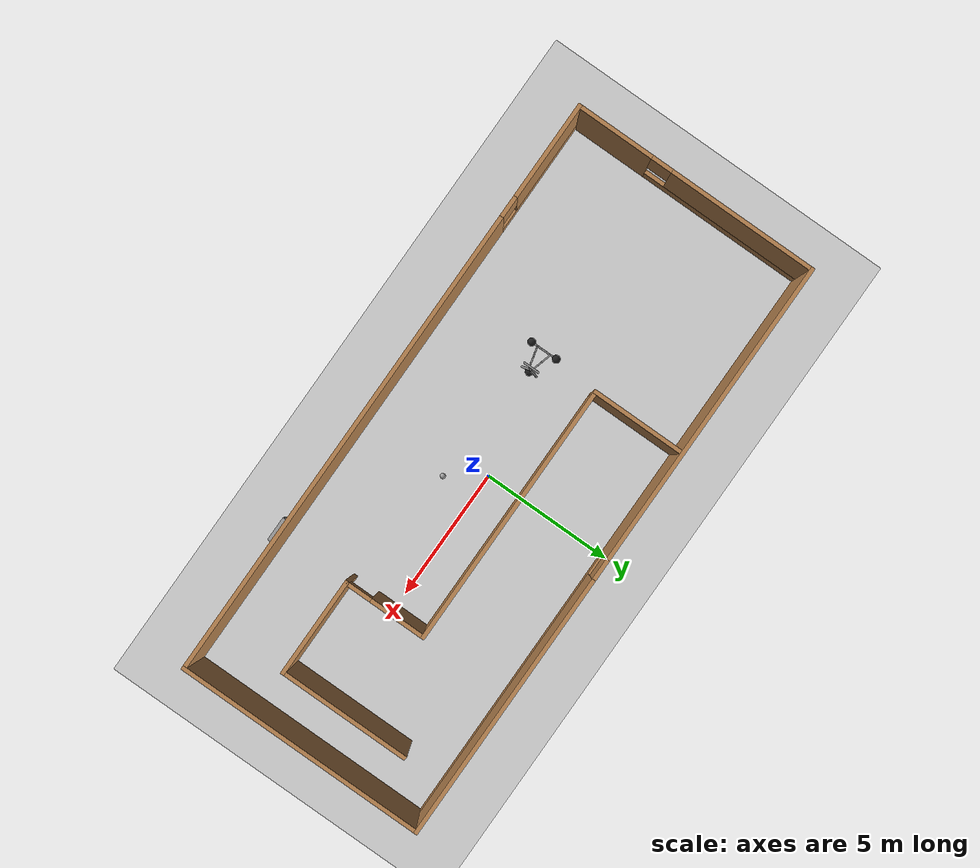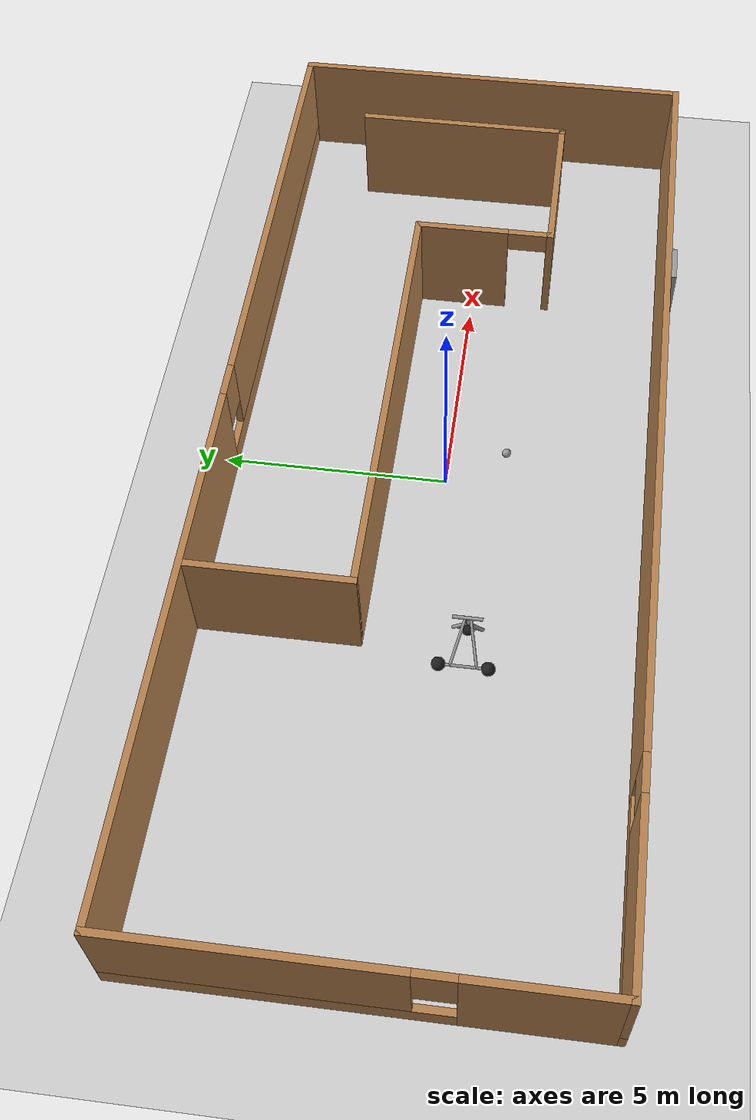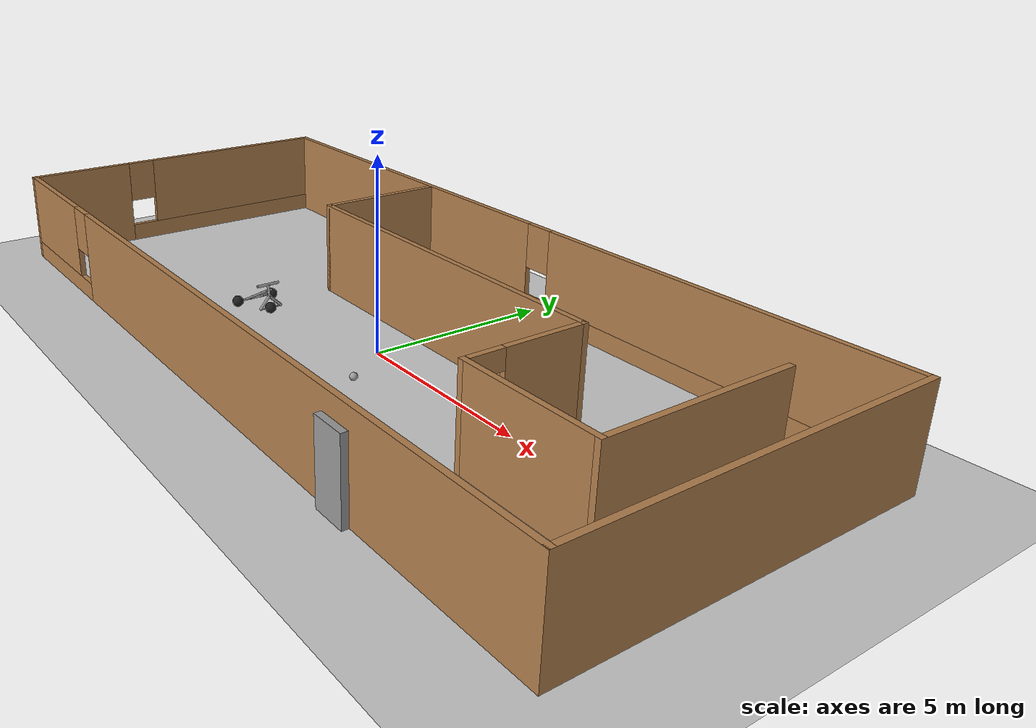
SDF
<sdf version="1.6">
 <world name="default">
  <model name="ground_plane">
   <static>1</static>
   <link name="link">
    <collision name="collision">
     <geometry><plane><normal>0 0 1</normal><size>100 100</size></plane></geometry>
     <surface>
      <contact><collide_bitmask>65535</collide_bitmask></contact>
      <friction><ode><mu>100</mu><mu2>50</mu2></ode></friction>
     </surface>
    </collision>
    <visual name="visual">
     <cast_shadows>0</cast_shadows>
     <geometry><plane><normal>0 0 1</normal><size>100 100</size></plane></geometry>
     <material>
      <script><uri>file://media/materials/scripts/gazebo.material</uri><name>Gazebo/Grey</name></script>
     </material>
    </visual>
   </link>
  </model>
  <model name="LEEsbuilding">
   <pose>-0.38879 0.13876 0 0 -0 0</pose>
   <link name="Door_2">
    <collision name="Door_2_Collision">
     <geometry><box><size>0.9 0.17 2</size></box></geometry>
     <pose>0 0 1 0 -0 0</pose>
    </collision>
    <visual name="Door_2_Visual">
     <pose>0 0 1 0 -0 0</pose>
     <geometry><box><size>0.9 0.17 2</size></box></geometry>
     <material>
      <script><uri>file://media/materials/scripts/gazebo.material</uri><name>Gazebo/Grey</name></script>
     </material>
    </visual>
    <pose>5.88188 -4.8378 0 0 -0 0</pose>
   </link>
   <link name="Wall_11">
    <collision name="Wall_11_Collision">
     <geometry><box><size>3.75 0.15 2.5</size></box></geometry>
     <pose>0 0 1.25 0 -0 0</pose>
    </collision>
    <visual name="Wall_11_Visual">
     <pose>0 0 1.25 0 -0 0</pose>
     <geometry><box><size>3.75 0.15 2.5</size></box></geometry>
     <material>
      <script><uri>file://media/materials/scripts/gazebo.material</uri><name>Gazebo/Wood</name></script>
      <ambient>1 1 1 1</ambient>
     </material>
     <meta><layer>0</layer></meta>
    </visual>
    <pose>7.73215 -1.9245 0 0 -0 0</pose>
   </link>
   <link name="Wall_12">
    <collision name="Wall_12_Collision">
     <geometry><box><size>5 0.15 2.5</size></box></geometry>
     <pose>0 0 1.25 0 -0 0</pose>
    </collision>
    <visual name="Wall_12_Visual">
     <pose>0 0 1.25 0 -0 0</pose>
     <geometry><box><size>5 0.15 2.5</size></box></geometry>
     <material>
      <script><uri>file://media/materials/scripts/gazebo.material</uri><name>Gazebo/Wood</name></script>
      <ambient>1 1 1 1</ambient>
     </material>
     <meta><layer>0</layer></meta>
    </visual>
    <pose>9.53215 0.500496 0 0 -0 1.5708</pose>
   </link>
   <link name="Wall_2">
    <pose>0 4.675 0 0 -0 0</pose>
    <visual name="Wall_2_Visual_0">
     <pose>-5.5056 0 1.25 0 -0 0</pose>
     <geometry><box><size>11.7388 0.15 2.5</size></box></geometry>
     <material>
      <script><uri>file://media/materials/scripts/gazebo.material</uri><name>Gazebo/Wood</name></script>
      <ambient>1 1 1 1</ambient>
     </material>
     <meta><layer>0</layer></meta>
    </visual>
    <collision name="Wall_2_Collision_0">
     <geometry><box><size>11.7388 0.15 2.5</size></box></geometry>
     <pose>-5.5056 0 1.25 0 -0 0</pose>
    </collision>
    <visual name="Wall_2_Visual_1">
     <pose>5.8694 0 0.25 0 -0 0</pose>
     <geometry><box><size>11.0112 0.15 0.5</size></box></geometry>
     <material>
      <script><uri>file://media/materials/scripts/gazebo.material</uri><name>Gazebo/Wood</name></script>
      <ambient>1 1 1 1</ambient>
     </material>
     <meta><layer>0</layer></meta>
    </visual>
    <collision name="Wall_2_Collision_1">
     <geometry><box><size>11.0112 0.15 0.5</size></box></geometry>
     <pose>5.8694 0 0.25 0 -0 0</pose>
    </collision>
    <visual name="Wall_2_Visual_2">
     <pose>6.2694 0 1.5 0 -0 0</pose>
     <geometry><box><size>10.2112 0.15 2</size></box></geometry>
     <material>
      <script><uri>file://media/materials/scripts/gazebo.material</uri><name>Gazebo/Wood</name></script>
      <ambient>1 1 1 1</ambient>
     </material>
     <meta><layer>0</layer></meta>
    </visual>
    <collision name="Wall_2_Collision_2">
     <geometry><box><size>10.2112 0.15 2</size></box></geometry>
     <pose>6.2694 0 1.5 0 -0 0</pose>
    </collision>
    <visual name="Wall_2_Visual_3">
     <pose>0.763804 0 1.9 0 -0 0</pose>
     <geometry><box><size>0.8 0.15 1.2</size></box></geometry>
     <material>
      <script><uri>file://media/materials/scripts/gazebo.material</uri><name>Gazebo/Wood</name></script>
      <ambient>1 1 1 1</ambient>
     </material>
     <meta><layer>0</layer></meta>
    </visual>
    <collision name="Wall_2_Collision_3">
     <geometry><box><size>0.8 0.15 1.2</size></box></geometry>
     <pose>0.763804 0 1.9 0 -0 0</pose>
    </collision>
   </link>
   <link name="Wall_3">
    <collision name="Wall_3_Collision">
     <geometry><box><size>9.5 0.15 2.5</size></box></geometry>
     <pose>0 0 1.25 0 -0 0</pose>
    </collision>
    <visual name="Wall_3_Visual">
     <pose>0 0 1.25 0 -0 0</pose>
     <geometry><box><size>9.5 0.15 2.5</size></box></geometry>
     <material>
      <script><uri>file://media/materials/scripts/gazebo.material</uri><name>Gazebo/Wood</name></script>
      <ambient>1 1 1 1</ambient>
     </material>
     <meta><layer>0</layer></meta>
    </visual>
    <pose>11.3 0 0 0 0 -1.5708</pose>
   </link>
   <link name="Wall_4">
    <pose>0 -4.675 0 0 -0 3.14159</pose>
    <visual name="Wall_4_Visual_0">
     <pose>-2.26223 0 1.25 0 -0 0</pose>
     <geometry><box><size>18.2255 0.15 2.5</size></box></geometry>
     <material>
      <script><uri>file://media/materials/scripts/gazebo.material</uri><name>Gazebo/Wood</name></script>
      <ambient>1 1 1 1</ambient>
     </material>
     <meta><layer>0</layer></meta>
    </visual>
    <collision name="Wall_4_Collision_0">
     <geometry><box><size>18.2255 0.15 2.5</size></box></geometry>
     <pose>-2.26223 0 1.25 0 -0 0</pose>
    </collision>
    <visual name="Wall_4_Visual_1">
     <pose>9.11277 0 0.25 0 -0 0</pose>
     <geometry><box><size>4.52445 0.15 0.5</size></box></geometry>
     <material>
      <script><uri>file://media/materials/scripts/gazebo.material</uri><name>Gazebo/Wood</name></script>
      <ambient>1 1 1 1</ambient>
     </material>
     <meta><layer>0</layer></meta>
    </visual>
    <collision name="Wall_4_Collision_1">
     <geometry><box><size>4.52445 0.15 0.5</size></box></geometry>
     <pose>9.11277 0 0.25 0 -0 0</pose>
    </collision>
    <visual name="Wall_4_Visual_2">
     <pose>9.51277 0 1.5 0 -0 0</pose>
     <geometry><box><size>3.72445 0.15 2</size></box></geometry>
     <material>
      <script><uri>file://media/materials/scripts/gazebo.material</uri><name>Gazebo/Wood</name></script>
      <ambient>1 1 1 1</ambient>
     </material>
     <meta><layer>0</layer></meta>
    </visual>
    <collision name="Wall_4_Collision_2">
     <geometry><box><size>3.72445 0.15 2</size></box></geometry>
     <pose>9.51277 0 1.5 0 -0 0</pose>
    </collision>
    <visual name="Wall_4_Visual_3">
     <pose>7.25055 0 1.9 0 -0 0</pose>
     <geometry><box><size>0.8 0.15 1.2</size></box></geometry>
     <material>
      <script><uri>file://media/materials/scripts/gazebo.material</uri><name>Gazebo/Wood</name></script>
      <ambient>1 1 1 1</ambient>
     </material>
     <meta><layer>0</layer></meta>
    </visual>
    <collision name="Wall_4_Collision_3">
     <geometry><box><size>0.8 0.15 1.2</size></box></geometry>
     <pose>7.25055 0 1.9 0 -0 0</pose>
    </collision>
   </link>
   <link name="Wall_5">
    <pose>-11.3 0 0 0 -0 1.5708</pose>
    <visual name="Wall_5_Visual_0">
     <pose>-3.2482 0 1.25 0 -0 0</pose>
     <geometry><box><size>3.0036 0.15 2.5</size></box></geometry>
     <material>
      <script><uri>file://media/materials/scripts/gazebo.material</uri><name>Gazebo/Wood</name></script>
      <ambient>1 1 1 1</ambient>
     </material>
     <meta><layer>0</layer></meta>
    </visual>
    <collision name="Wall_5_Collision_0">
     <geometry><box><size>3.0036 0.15 2.5</size></box></geometry>
     <pose>-3.2482 0 1.25 0 -0 0</pose>
    </collision>
    <visual name="Wall_5_Visual_1">
     <pose>1.5018 0 0.25 0 -0 0</pose>
     <geometry><box><size>6.4964 0.15 0.5</size></box></geometry>
     <material>
      <script><uri>file://media/materials/scripts/gazebo.material</uri><name>Gazebo/Wood</name></script>
      <ambient>1 1 1 1</ambient>
     </material>
     <meta><layer>0</layer></meta>
    </visual>
    <collision name="Wall_5_Collision_1">
     <geometry><box><size>6.4964 0.15 0.5</size></box></geometry>
     <pose>1.5018 0 0.25 0 -0 0</pose>
    </collision>
    <visual name="Wall_5_Visual_2">
     <pose>1.9018 0 1.5 0 -0 0</pose>
     <geometry><box><size>5.6964 0.15 2</size></box></geometry>
     <material>
      <script><uri>file://media/materials/scripts/gazebo.material</uri><name>Gazebo/Wood</name></script>
      <ambient>1 1 1 1</ambient>
     </material>
     <meta><layer>0</layer></meta>
    </visual>
    <collision name="Wall_5_Collision_2">
     <geometry><box><size>5.6964 0.15 2</size></box></geometry>
     <pose>1.9018 0 1.5 0 -0 0</pose>
    </collision>
    <visual name="Wall_5_Visual_3">
     <pose>-1.3464 0 1.9 0 -0 0</pose>
     <geometry><box><size>0.8 0.15 1.2</size></box></geometry>
     <material>
      <script><uri>file://media/materials/scripts/gazebo.material</uri><name>Gazebo/Wood</name></script>
      <ambient>1 1 1 1</ambient>
     </material>
     <meta><layer>0</layer></meta>
    </visual>
    <collision name="Wall_5_Collision_3">
     <geometry><box><size>0.8 0.15 1.2</size></box></geometry>
     <pose>-1.3464 0 1.9 0 -0 0</pose>
    </collision>
   </link>
   <link name="Wall_7">
    <collision name="Wall_7_Collision">
     <geometry><box><size>3.5 0.15 2.5</size></box></geometry>
     <pose>0 0 1.25 0 -0 0</pose>
    </collision>
    <visual name="Wall_7_Visual">
     <pose>0 0 1.25 0 -0 0</pose>
     <geometry><box><size>3.5 0.15 2.5</size></box></geometry>
     <material>
      <script><uri>file://media/materials/scripts/gazebo.material</uri><name>Gazebo/Wood</name></script>
      <ambient>1 1 1 1</ambient>
     </material>
     <meta><layer>0</layer></meta>
    </visual>
    <pose>-3.91784 2.8505 0 0 0 -1.5708</pose>
   </link>
   <link name="Wall_8">
    <collision name="Wall_8_Collision">
     <geometry><box><size>10 0.15 2.5</size></box></geometry>
     <pose>0 0 1.25 0 -0 0</pose>
    </collision>
    <visual name="Wall_8_Visual">
     <pose>0 0 1.25 0 -0 0</pose>
     <geometry><box><size>10 0.15 2.5</size></box></geometry>
     <material>
      <script><uri>file://media/materials/scripts/gazebo.material</uri><name>Gazebo/Wood</name></script>
      <ambient>1 1 1 1</ambient>
     </material>
     <meta><layer>0</layer></meta>
    </visual>
    <pose>1.00716 1.1755 0 0 -0 0</pose>
   </link>
   <link name="Wall_9">
    <pose>5.93215 -0.374504 0 0 0 -1.5708</pose>
    <visual name="Wall_9_Visual_0">
     <pose>-0.531713 0 1.25 0 -0 0</pose>
     <geometry><box><size>2.18657 0.15 2.5</size></box></geometry>
     <material>
      <script><uri>file://media/materials/scripts/gazebo.material</uri><name>Gazebo/Wood</name></script>
      <ambient>1 1 1 1</ambient>
     </material>
     <meta><layer>0</layer></meta>
    </visual>
    <collision name="Wall_9_Collision_0">
     <geometry><box><size>2.18657 0.15 2.5</size></box></geometry>
     <pose>-0.531713 0 1.25 0 -0 0</pose>
    </collision>
    <visual name="Wall_9_Visual_1">
     <pose>1.54329 0 1.25 0 -0 0</pose>
     <geometry><box><size>0.163425 0.15 2.5</size></box></geometry>
     <material>
      <script><uri>file://media/materials/scripts/gazebo.material</uri><name>Gazebo/Wood</name></script>
      <ambient>1 1 1 1</ambient>
     </material>
     <meta><layer>0</layer></meta>
    </visual>
    <collision name="Wall_9_Collision_1">
     <geometry><box><size>0.163425 0.15 2.5</size></box></geometry>
     <pose>1.54329 0 1.25 0 -0 0</pose>
    </collision>
    <visual name="Wall_9_Visual_2">
     <pose>1.01157 0 2.25 0 -0 0</pose>
     <geometry><box><size>0.9 0.15 0.5</size></box></geometry>
     <material>
      <script><uri>file://media/materials/scripts/gazebo.material</uri><name>Gazebo/Wood</name></script>
      <ambient>1 1 1 1</ambient>
     </material>
     <meta><layer>0</layer></meta>
    </visual>
    <collision name="Wall_9_Collision_2">
     <geometry><box><size>0.9 0.15 0.5</size></box></geometry>
     <pose>1.01157 0 2.25 0 -0 0</pose>
    </collision>
   </link>
   <static>1</static>
  </model>
  <model name="my_ball">
   <link name="link_1">
    <inertial>
     <mass>1</mass>
     <inertia><ixx>0.1</ixx><ixy>0</ixy><ixz>0</ixz><iyy>0.1</iyy><iyz>0</iyz><izz>0.1</izz></inertia>
    </inertial>
    <visual name="visual">
     <geometry><sphere><radius>0.1</radius></sphere></geometry>
     <material>
      <lighting>1</lighting>
      <script><uri>file://media/materials/scripts/gazebo.material</uri><name>Gazebo/Grey</name></script>
      <shader type="pixel"><normal_map>__default__</normal_map></shader>
      <ambient>1 1 1 1</ambient>
      <diffuse>1 1 1 1</diffuse>
      <specular>1 1 1 1</specular>
      <emissive>1 1 1 1</emissive>
     </material>
    </visual>
    <collision name="collision">
     <geometry><sphere><radius>0.1</radius></sphere></geometry>
     <surface>
      <friction>
       <ode><mu>1</mu><mu2>1</mu2><fdir1>0 0 0</fdir1><slip1>0</slip1><slip2>0</slip2></ode>
       <torsional>
        <coefficient>1</coefficient>
        <patch_radius>0</patch_radius>
        <surface_radius>0</surface_radius>
        <use_patch_radius>1</use_patch_radius>
        <ode><slip>0</slip></ode>
       </torsional>
      </friction>
      <bounce><restitution_coefficient>0</restitution_coefficient><threshold>1e+06</threshold></bounce>
      <contact>
       <collide_without_contact>0</collide_without_contact>
       <collide_without_contact_bitmask>1</collide_without_contact_bitmask>
       <collide_bitmask>1</collide_bitmask>
       <ode>
        <soft_cfm>0</soft_cfm>
        <soft_erp>0.2</soft_erp>
        <kp>1e+13</kp>
        <kd>1</kd>
        <max_vel>0.01</max_vel>
        <min_depth>0</min_depth>
       </ode>
       <bullet>
        <split_impulse>1</split_impulse>
        <split_impulse_penetration_threshold>-0.01</split_impulse_penetration_threshold>
        <soft_cfm>0</soft_cfm>
        <soft_erp>0.2</soft_erp>
        <kp>1e+13</kp>
        <kd>1</kd>
       </bullet>
      </contact>
     </surface>
    </collision>
   </link>
   <static>0</static>
   <pose>0.910769 -1.28817 0.1 0 -0 0</pose>
  </model>
  <model name="trisphere_cycle">
   <link name="frame">
    <pose>-0.408559 0 0.385023 0 -0.522021 0</pose>
    <inertial>
     <mass>10</mass>
     <inertia><ixx>0.228</ixx><iyy>0.743521</iyy><izz>0.965521</izz><ixy>0</ixy><ixz>0</ixz><iyz>0</iyz></inertia>
    </inertial>
    <collision name="axle_collision">
     <pose>-0.471335 0 0 1.5708 -0 0</pose>
     <geometry><cylinder><length>1.03923</length><radius>0.03</radius></cylinder></geometry>
    </collision>
    <visual name="axle_visual">
     <pose>-0.471335 0 0 1.5708 -0 0</pose>
     <geometry><cylinder><length>1.03923</length><radius>0.03</radius></cylinder></geometry>
     <material>
      <script><uri>file://media/materials/scripts/gazebo.material</uri><name>Gazebo/Grey</name></script>
     </material>
    </visual>
    <collision name="frame_left_collision">
     <pose>0 0.171552 0 2.986 1.57079 2.76675</pose>
     <geometry><cylinder><length>1.00317</length><radius>0.03</radius></cylinder></geometry>
    </collision>
    <visual name="frame_left_visual">
     <pose>0 0.171552 0 2.986 1.57079 2.76675</pose>
     <geometry><cylinder><length>1.00317</length><radius>0.03</radius></cylinder></geometry>
     <material>
      <script><uri>file://media/materials/scripts/gazebo.material</uri><name>Gazebo/Grey</name></script>
     </material>
    </visual>
    <collision name="frame_right_collision">
     <pose>0 -0.171552 0 -2.986 1.57079 -2.76675</pose>
     <geometry><cylinder><length>1.00317</length><radius>0.03</radius></cylinder></geometry>
    </collision>
    <visual name="frame_right_visual">
     <pose>0 -0.171552 0 -2.986 1.57079 -2.76675</pose>
     <geometry><cylinder><length>1.00317</length><radius>0.03</radius></cylinder></geometry>
     <material>
      <script><uri>file://media/materials/scripts/gazebo.material</uri><name>Gazebo/Grey</name></script>
     </material>
    </visual>
   </link>
   <link name="fork">
    <pose>0.041441 0 0.385023 0 -0.174533 0</pose>
    <inertial>
     <mass>3</mass>
     <inertia>
      <ixx>0.158203</ixx>
      <iyy>0.0583594</iyy>
      <izz>0.102656</izz>
      <ixy>0</ixy>
      <ixz>0</ixz>
      <iyz>0</iyz>
     </inertia>
    </inertial>
    <collision name="handlebars_collision">
     <pose>0 0 0.397748 1.5708 -0 0</pose>
     <geometry><cylinder><length>0.636396</length><radius>0.0375</radius></cylinder></geometry>
    </collision>
    <visual name="handlebars_visual">
     <pose>0 0 0.397748 1.5708 -0 0</pose>
     <geometry><cylinder><length>0.636396</length><radius>0.0375</radius></cylinder></geometry>
     <material>
      <script><uri>file://media/materials/scripts/gazebo.material</uri><name>Gazebo/Grey</name></script>
     </material>
    </visual>
    <collision name="headtube_collision">
     <pose>0 0 0.238649 0 -0 0</pose>
     <geometry><cylinder><length>0.318198</length><radius>0.0375</radius></cylinder></geometry>
    </collision>
    <visual name="headtube_visual">
     <pose>0 0 0.238649 0 -0 0</pose>
     <geometry><cylinder><length>0.318198</length><radius>0.0375</radius></cylinder></geometry>
     <material>
      <script><uri>file://media/materials/scripts/gazebo.material</uri><name>Gazebo/Grey</name></script>
     </material>
    </visual>
    <collision name="spindle_collision">
     <pose>0 0 -0.238649 1.5708 -0 0</pose>
     <geometry><cylinder><length>0.636396</length><radius>0.015</radius></cylinder></geometry>
    </collision>
    <visual name="spindle_visual">
     <pose>0 0 -0.238649 1.5708 -0 0</pose>
     <geometry><cylinder><length>0.636396</length><radius>0.015</radius></cylinder></geometry>
     <material>
      <script><uri>file://media/materials/scripts/gazebo.material</uri><name>Gazebo/Grey</name></script>
     </material>
    </visual>
    <collision name="fork_left_collision">
     <pose>0 0.159099 -0.07955 0.785398 -0 0</pose>
     <geometry><cylinder><length>0.45</length><radius>0.0375</radius></cylinder></geometry>
    </collision>
    <visual name="fork_left_visual">
     <pose>0 0.159099 -0.07955 0.785398 -0 0</pose>
     <geometry><cylinder><length>0.45</length><radius>0.0375</radius></cylinder></geometry>
     <material>
      <script><uri>file://media/materials/scripts/gazebo.material</uri><name>Gazebo/Grey</name></script>
     </material>
    </visual>
    <collision name="fork_right_collision">
     <pose>0 -0.159099 -0.07955 -0.785398 0 0</pose>
     <geometry><cylinder><length>0.45</length><radius>0.0375</radius></cylinder></geometry>
    </collision>
    <visual name="fork_right_visual">
     <pose>0 -0.159099 -0.07955 -0.785398 0 0</pose>
     <geometry><cylinder><length>0.45</length><radius>0.0375</radius></cylinder></geometry>
     <material>
      <script><uri>file://media/materials/scripts/gazebo.material</uri><name>Gazebo/Grey</name></script>
     </material>
    </visual>
   </link>
   <link name="wheel_front">
    <pose>0.082882 0 0.15 0 -0 0</pose>
    <inertial>
     <mass>0.5</mass>
     <inertia><ixx>0.0045</ixx><iyy>0.0045</iyy><izz>0.0045</izz><ixy>0</ixy><ixz>0</ixz><iyz>0</iyz></inertia>
    </inertial>
    <collision name="collision">
     <geometry><sphere><radius>0.15</radius></sphere></geometry>
     <surface><contact><ode><kp>1e+08</kp><kd>1</kd><min_depth>0.0005</min_depth></ode></contact></surface>
    </collision>
    <visual name="visual">
     <geometry><sphere><radius>0.15</radius></sphere></geometry>
     <material>
      <script><uri>file://media/materials/scripts/gazebo.material</uri><name>Gazebo/Black</name></script>
     </material>
    </visual>
   </link>
   <joint name="wheel_front_steer" type="revolute">
    <parent>frame</parent>
    <child>fork</child>
    <axis>
     <xyz>0 0 1</xyz>
     <limit><lower>-0.959931</lower><upper>0.959931</upper></limit>
     <use_parent_model_frame>0</use_parent_model_frame>
     <dynamics><spring_reference>0</spring_reference><spring_stiffness>0</spring_stiffness></dynamics>
    </axis>
   </joint>
   <joint name="wheel_front_spin" type="revolute">
    <parent>fork</parent>
    <child>wheel_front</child>
    <axis>
     <xyz>0 1 0</xyz>
     <use_parent_model_frame>0</use_parent_model_frame>
     <limit><lower>-1e+16</lower><upper>1e+16</upper></limit>
     <dynamics><spring_reference>0</spring_reference><spring_stiffness>0</spring_stiffness></dynamics>
    </axis>
   </joint>
   <link name="wheel_rear_left">
    <pose>-0.817118 0.519615 0.15 0 -0 0</pose>
    <inertial>
     <mass>0.5</mass>
     <inertia><ixx>0.0045</ixx><iyy>0.0045</iyy><izz>0.0045</izz><ixy>0</ixy><ixz>0</ixz><iyz>0</iyz></inertia>
    </inertial>
    <collision name="collision">
     <geometry><sphere><radius>0.15</radius></sphere></geometry>
     <surface><contact><ode><kp>1e+08</kp><kd>1</kd><min_depth>0.0005</min_depth></ode></contact></surface>
    </collision>
    <visual name="visual">
     <geometry><sphere><radius>0.15</radius></sphere></geometry>
     <material>
      <script><uri>file://media/materials/scripts/gazebo.material</uri><name>Gazebo/Black</name></script>
     </material>
    </visual>
   </link>
   <joint name="wheel_rear_left_spin" type="revolute">
    <parent>frame</parent>
    <child>wheel_rear_left</child>
    <axis>
     <xyz>0 1 0</xyz>
     <use_parent_model_frame>0</use_parent_model_frame>
     <limit><lower>-1e+16</lower><upper>1e+16</upper></limit>
     <dynamics><spring_reference>0</spring_reference><spring_stiffness>0</spring_stiffness></dynamics>
    </axis>
   </joint>
   <link name="wheel_rear_right">
    <pose>-0.817118 -0.519615 0.15 0 -0 0</pose>
    <inertial>
     <mass>0.5</mass>
     <inertia><ixx>0.0045</ixx><iyy>0.0045</iyy><izz>0.0045</izz><ixy>0</ixy><ixz>0</ixz><iyz>0</iyz></inertia>
    </inertial>
    <collision name="collision">
     <geometry><sphere><radius>0.15</radius></sphere></geometry>
     <surface><contact><ode><kp>1e+08</kp><kd>1</kd><min_depth>0.0005</min_depth></ode></contact></surface>
    </collision>
    <visual name="visual">
     <geometry><sphere><radius>0.15</radius></sphere></geometry>
     <material>
      <script><uri>file://media/materials/scripts/gazebo.material</uri><name>Gazebo/Black</name></script>
     </material>
    </visual>
   </link>
   <joint name="wheel_rear_right_spin" type="revolute">
    <parent>frame</parent>
    <child>wheel_rear_right</child>
    <axis>
     <xyz>0 1 0</xyz>
     <use_parent_model_frame>0</use_parent_model_frame>
     <limit><lower>-1e+16</lower><upper>1e+16</upper></limit>
     <dynamics><spring_reference>0</spring_reference><spring_stiffness>0</spring_stiffness></dynamics>
    </axis>
   </joint>
   <pose>-3.85657 -0.922708 0 0 -0 0</pose>
  </model>
 </world>
</sdf>
